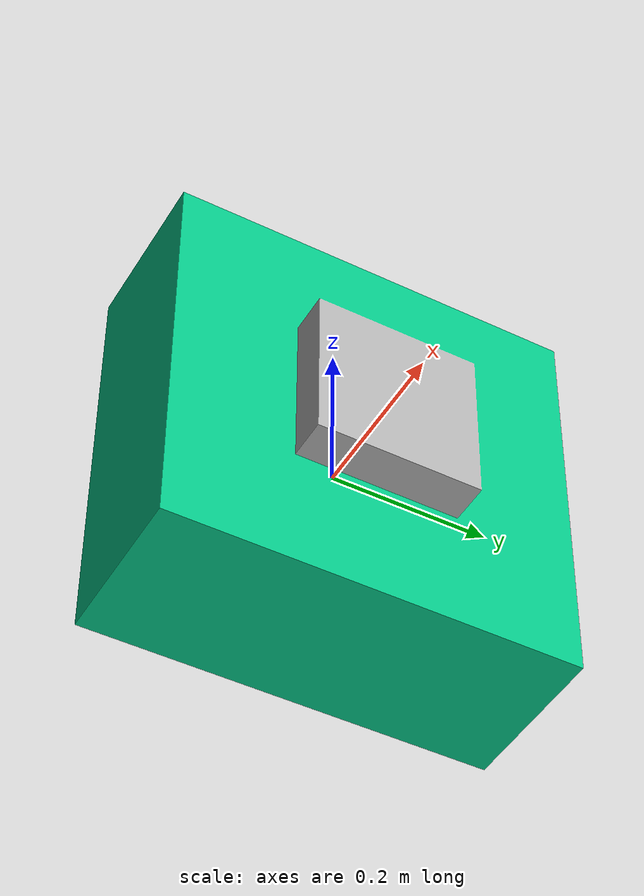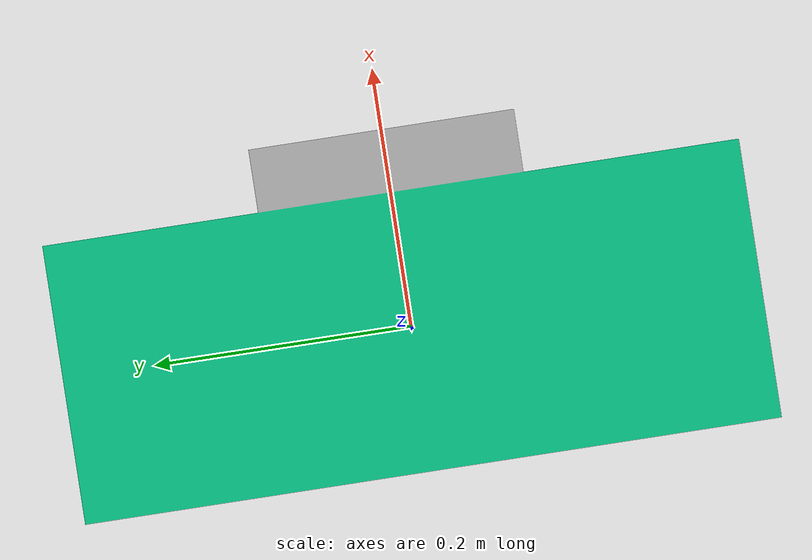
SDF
<?xml version="1.0"?>
<sdf version="1.7">

  <model name='apriltag_36h11_7'>
    <link name='main'>
      <pose>0 0 0 0 0 0</pose>
      <visual name="tag_viz">
        <pose>0 0 0 0 0 0</pose>
        <geometry>
          <mesh>
            <scale>1 1 1</scale>
            <uri>meshes/apriltag_36h11_7.dae</uri>
          </mesh>
        </geometry>
      </visual>
      <collision name="tag_block_collision">
        <pose>0 0 0 0 0 0</pose>
        <geometry>
          <box>
            <size>0.2 0.5 0.5</size>
          </box>
        </geometry>
      </collision>
    </link>

    <static>1</static>
  </model>

</sdf>
